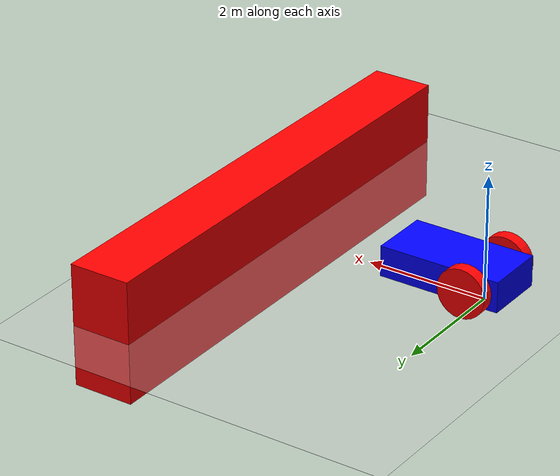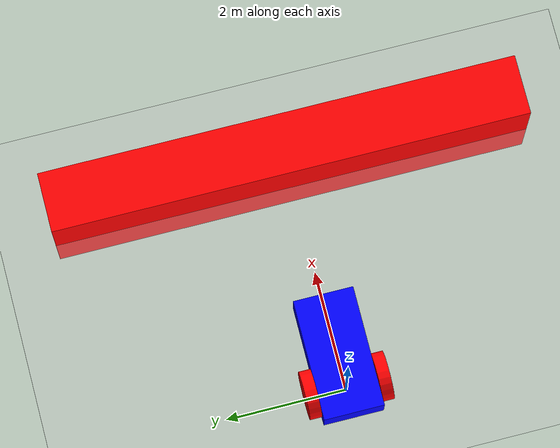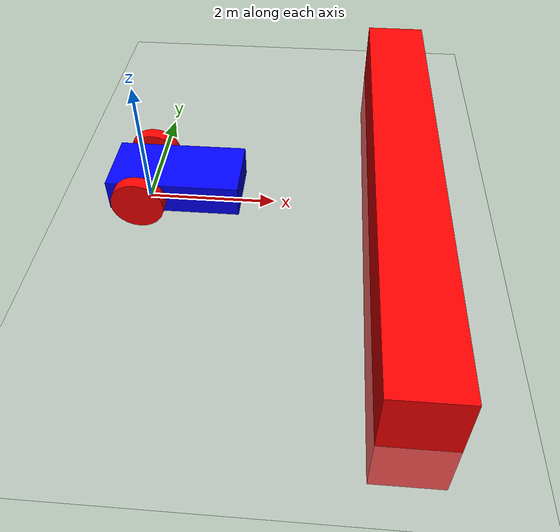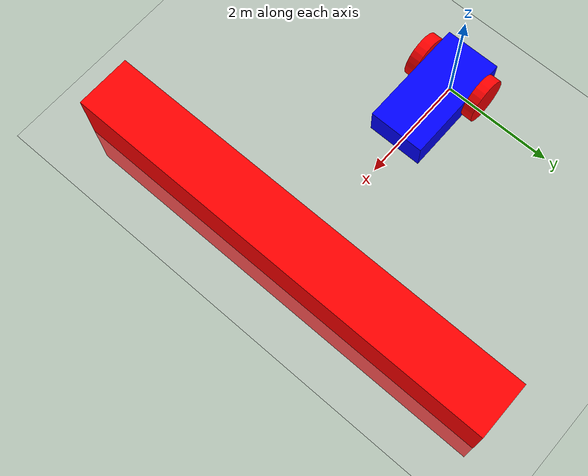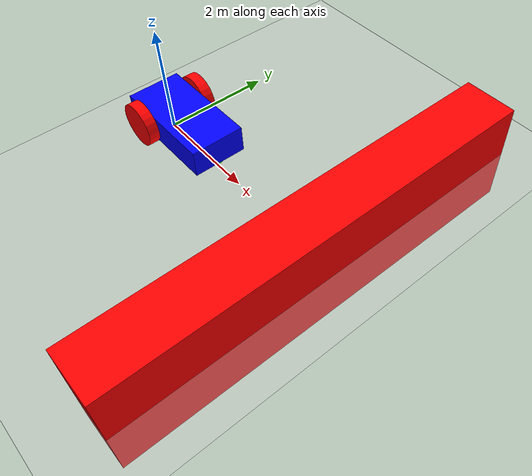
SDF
<sdf version="1.8">
 <world name="car_world">
  <physics name="1ms" type="ignored">
   <max_step_size>0.001</max_step_size>
   <real_time_factor>1.0</real_time_factor>
  </physics>
  <plugin filename="libignition-gazebo-physics-system.so" name="ignition::gazebo::systems::Physics"/>
  <plugin filename="libignition-gazebo-user-commands-system.so" name="ignition::gazebo::systems::UserCommands"/>
  <plugin filename="libignition-gazebo-scene-broadcaster-system.so" name="ignition::gazebo::systems::SceneBroadcaster"/>
  <plugin filename="libignition-gazebo-sensors-system.so" name="ignition::gazebo::systems::Sensors">
   <render_engine>ogre2</render_engine>
  </plugin>
  <light type="directional" name="sun">
   <pose>0 0 10 0 0 0</pose>
   <diffuse>0.8 0.8 0.8 1</diffuse>
   <specular>0.2 0.2 0.2 1</specular>
   <attenuation>
    <range>1000</range>
    <constant>0.9</constant>
    <linear>0.01</linear>
    <quadratic>0.001</quadratic>
   </attenuation>
   <direction>-0.5 0.1 -0.9</direction>
  </light>
  <model name="ground_plane">
   <static>true</static>
   <link name="link">
    <collision name="collision"><geometry><plane><normal>0 0 1</normal></plane></geometry></collision>
    <visual name="visual">
     <geometry><plane><normal>0 0 1</normal><size>100 100</size></plane></geometry>
     <material>
      <ambient>0.8 0.8 0.8 1</ambient>
      <diffuse>0.8 0.8 0.8 1</diffuse>
      <specular>0.8 0.8 0.8 1</specular>
     </material>
    </visual>
   </link>
  </model>
  <model name="wall">
   <static>true</static>
   <pose relative_to="world">4.0 0 0 0 0 0</pose>
   <link name="link">
    <collision name="collision">
     <inertial>
      <mass>1.14395</mass>
      <inertia>
       <ixx>0.095329</ixx>
       <ixy>0</ixy>
       <ixz>0</ixz>
       <iyy>0.381317</iyy>
       <iyz>0</iyz>
       <izz>0.476646</izz>
      </inertia>
     </inertial>
     <geometry><box><size>1.0 8.0 2.0</size></box></geometry>
    </collision>
    <visual name="visual">
     <geometry><box><size>1.0 8.0 2.0</size></box></geometry>
     <material>
      <ambient>1.0 0.0 0.0 1</ambient>
      <diffuse>1.0 0.0 0.0 1</diffuse>
      <specular>1.0 0.0 0.0 1</specular>
     </material>
     <plugin filename="ignition-gazebo-label-system" name="ignition::gazebo::systems::Label">
      <label>10</label>
     </plugin>
    </visual>
   </link>
  </model>
  <plugin filename="libignition-gazebo-triggered-publisher-system.so" name="ignition::gazebo::systems::TriggeredPublisher">
   <input type="ignition.msgs.Int32" topic="/keyboard/keypress"><match field="data">16777235</match></input>
   <output type="ignition.msgs.Twist" topic="/cmd_vel">linear: {x: 0.5}, angular: {z: 0.0}</output>
  </plugin>
  <plugin filename="libignition-gazebo-triggered-publisher-system.so" name="ignition::gazebo::systems::TriggeredPublisher">
   <input type="ignition.msgs.Int32" topic="/keyboard/keypress"><match field="data">16777237</match></input>
   <output type="ignition.msgs.Twist" topic="/cmd_vel">linear: {x: -0.5}, angular: {z: 0.0}</output>
  </plugin>
  <model name="vehicle_blue" canonical_link="chassis">
   <pose relative_to="world">0 0 0 0 0 0</pose>
   <plugin filename="ignition-gazebo-label-system" name="ignition::gazebo::systems::Label">
    <label>10</label>
   </plugin>
   <plugin filename="libignition-gazebo-diff-drive-system.so" name="ignition::gazebo::systems::DiffDrive">
    <left_joint>left_wheel_joint</left_joint>
    <right_joint>right_wheel_joint</right_joint>
    <wheel_separation>1.2</wheel_separation>
    <wheel_radius>0.4</wheel_radius>
    <odom_publish_frequency>1</odom_publish_frequency>
    <topic>cmd_vel</topic>
   </plugin>
   <frame name="lidar_frame" attached_to="chassis"><pose>0.8 0 0.5 0 0 0</pose></frame>
   <link name="chassis">
    <sensor name="gpu_lidar" type="gpu_lidar">
     <pose relative_to="lidar_frame">0 0 0 0 0 0</pose>
     <topic>lidar</topic>
     <update_rate>10</update_rate>
     <ray>
      <scan>
       <horizontal>
        <samples>360</samples>
        <resolution>1</resolution>
        <min_angle>-1.396263</min_angle>
        <max_angle>1.396263</max_angle>
       </horizontal>
       <vertical>
        <samples>1</samples>
        <resolution>0.01</resolution>
        <min_angle>0</min_angle>
        <max_angle>0</max_angle>
       </vertical>
      </scan>
      <range><min>0.08</min><max>10.0</max><resolution>0.01</resolution></range>
     </ray>
     <always_on>1</always_on>
     <visualize>true</visualize>
    </sensor>
    <sensor name="camera1" type="camera">
     <update_rate>10</update_rate>
     <pose relative_to="lidar_frame">0 0 0 0 0 0</pose>
     <topic>/images_l16</topic>
     <camera>
      <horizontal_fov>1.05</horizontal_fov>
      <image><width>256</width><height>256</height><format>L_INT16</format></image>
      <clip><near>0.1</near><far>10.0</far></clip>
     </camera>
    </sensor>
    <pose relative_to="__model__">0.5 0 0.4 0 0 0</pose>
    <inertial>
     <mass>1.14395</mass>
     <inertia>
      <ixx>0.095329</ixx>
      <ixy>0</ixy>
      <ixz>0</ixz>
      <iyy>0.381317</iyy>
      <iyz>0</iyz>
      <izz>0.476646</izz>
     </inertia>
    </inertial>
    <visual name="visual">
     <geometry><box><size>2.0 1.0 0.5</size></box></geometry>
     <material>
      <ambient>0.0 0.0 1.0 1</ambient>
      <diffuse>0.0 0.0 1.0 1</diffuse>
      <specular>0.0 0.0 1.0 1</specular>
     </material>
    </visual>
    <collision name="collision"><geometry><box><size>2.0 1.0 0.5</size></box></geometry></collision>
   </link>
   <link name="right_wheel">
    <pose relative_to="chassis">-0.5 -0.6 0 -1.5707 0 0</pose>
    <inertial>
     <mass>1</mass>
     <inertia><ixx>0.043333</ixx><ixy>0</ixy><ixz>0</ixz><iyy>0.043333</iyy><iyz>0</iyz><izz>0.08</izz></inertia>
    </inertial>
    <visual name="visual">
     <geometry><cylinder><radius>0.4</radius><length>0.2</length></cylinder></geometry>
     <material>
      <ambient>1.0 0.0 0.0 1</ambient>
      <diffuse>1.0 0.0 0.0 1</diffuse>
      <specular>1.0 0.0 0.0 1</specular>
     </material>
    </visual>
    <collision name="collision">
     <geometry><cylinder><radius>0.4</radius><length>0.2</length></cylinder></geometry>
    </collision>
   </link>
   <link name="left_wheel">
    <pose relative_to="chassis">-0.5 0.6 0 -1.5707 0 0</pose>
    <inertial>
     <mass>1</mass>
     <inertia><ixx>0.043333</ixx><ixy>0</ixy><ixz>0</ixz><iyy>0.043333</iyy><iyz>0</iyz><izz>0.08</izz></inertia>
    </inertial>
    <visual name="visual">
     <geometry><cylinder><radius>0.4</radius><length>0.2</length></cylinder></geometry>
     <material>
      <ambient>1.0 0.0 0.0 1</ambient>
      <diffuse>1.0 0.0 0.0 1</diffuse>
      <specular>1.0 0.0 0.0 1</specular>
     </material>
    </visual>
    <collision name="collision">
     <geometry><cylinder><radius>0.4</radius><length>0.2</length></cylinder></geometry>
    </collision>
   </link>
   <frame name="caster_frame" attached_to="chassis"><pose>0.8 0 -0.2 0 0 0</pose></frame>
   <link name="caster">
    <pose relative_to="caster_frame"/>
    <inertial>
     <mass>1</mass>
     <inertia><ixx>0.016</ixx><ixy>0</ixy><ixz>0</ixz><iyy>0.016</iyy><iyz>0</iyz><izz>0.016</izz></inertia>
    </inertial>
    <visual name="visual">
     <geometry><sphere><radius>0.2</radius></sphere></geometry>
     <material>
      <ambient>0.0 1 0.0 1</ambient>
      <diffuse>0.0 1 0.0 1</diffuse>
      <specular>0.0 1 0.0 1</specular>
     </material>
    </visual>
    <collision name="collision"><geometry><sphere><radius>0.2</radius></sphere></geometry></collision>
   </link>
   <joint name="left_wheel_joint" type="revolute">
    <pose relative_to="left_wheel"/>
    <parent>chassis</parent>
    <child>left_wheel</child>
    <axis>
     <xyz expressed_in="__model__">0 1 0</xyz>
     <limit><lower>-1.79769e+308</lower><upper>1.79769e+308</upper></limit>
    </axis>
   </joint>
   <joint name="right_wheel_joint" type="revolute">
    <pose relative_to="right_wheel"/>
    <parent>chassis</parent>
    <child>right_wheel</child>
    <axis>
     <xyz expressed_in="__model__">0 1 0</xyz>
     <limit><lower>-1.79769e+308</lower><upper>1.79769e+308</upper></limit>
    </axis>
   </joint>
   <joint name="caster_wheel" type="ball"><parent>chassis</parent><child>caster</child></joint>
  </model>
 </world>
</sdf>
